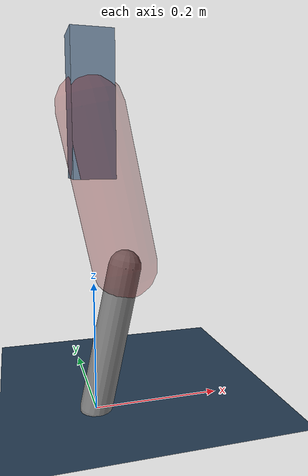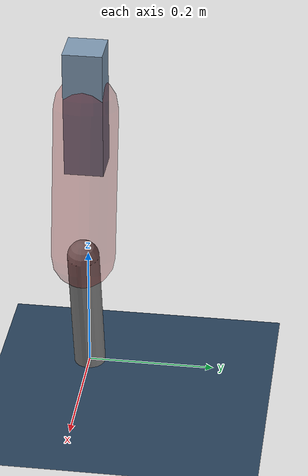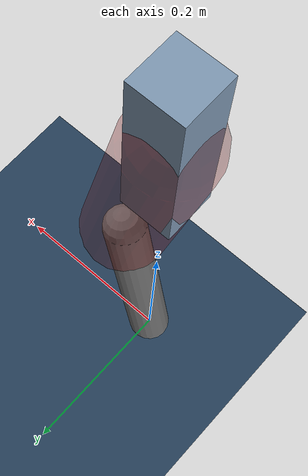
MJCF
<mujoco model="Hopper2D">
	<compiler inertiafromgeom="true" angle="radian" />
	<option timestep="0.001" integrator="implicit" cone="elliptic" solver="Newton" tolerance="1e-10" />

	<default>
		<geom contype="1" conaffinity="1" condim="3" friction="2 0.005 0.0001" solref="0.005 1" />
		<joint limited="true" damping="0.1" />
	</default>

	<asset>
		<texture name="skybox" type="skybox" builtin="gradient" rgb1=".4 .6 .8" rgb2="0 0 0" width="800" height="800" />
		<texture name="grid" type="2d" builtin="checker" rgb1=".1 .2 .3" rgb2=".2 .3 .4" width="300" height="300" mark="edge" markrgb=".2 .3 .4" />
		<material name="ground" texture="grid" texrepeat="1 1" texuniform="true" reflectance="0.1" />
		<material name="leg" rgba="0.5 0.6 0.7 1" />
	</asset>

	<worldbody>

		<geom name="floor" type="plane" size="5 5 0.25" material="ground" />

		<light directional="false" diffuse="0.8 0.8 0.8" specular="0.3 0.3 0.3" pos="0 0 2" dir="0 0 -1" />
		<light mode="targetbodycom" target="base" directional="false" diffuse="0.8 0.8 0.8" specular="0.3 0.3 0.3" pos="0 0 2" dir="0 0 -1" />

		<camera name="fixed" pos="0 -2 1" xyaxes="1 0 0 0 0 1" />
		<camera name="tracking" mode="trackcom" pos="0 -3 1" />

		<body name="root" pos="0 0 0.456398898395828">
			<joint name="slide_x" type="slide" axis="1 0 0" range="-100 100" />
			<joint name="slide_z" type="slide" axis="0 0 1" range="0 10" />

			<body name="base" pos="0 0 0">
				<geom name="torso" type="box" size="0.03 0.03 0.1" mass="3.118" material="leg" />

				<body name="link1" pos="0 0 0" euler="0 1.36651252255817 0">
					<joint type="hinge" axis="0 -1 0" pos="0 0 0" name="hinge1" limited="true" range="-3.14 3.14" stiffness="0" damping="0.1" />
					<geom name="thigh" type="capsule" fromto="0 0 0 0.23673478944105636 0 0" size="0.05" rgba="0.5 0 0 0.3" mass="0.8222104525467465" />

					<body name="link2" pos="0.23673478944105636 0 0" euler="0 0.41495014088858984 0">
						<joint type="hinge" axis="0 -1 0" pos="0 0 0" name="hinge2" limited="true" range="-3.14 3.14" stiffness="0" damping="0.1" />
						<geom name="shank" type="capsule" fromto="0 0 0 0.22966410895477163 0 0" size="0.025" mass="0.4257312871638173" />

					</body>
				</body>
			</body>
		</body>
	</worldbody>

	<actuator>
		<motor name="torque1" joint="hinge1" ctrlrange="-134.41112783247894 134.41112783247894" ctrllimited="true" gear="1" />
		<motor name="torque2" joint="hinge2" ctrlrange="-77.18345769832621 77.18345769832621" ctrllimited="true" gear="1" />
	</actuator>
</mujoco>
